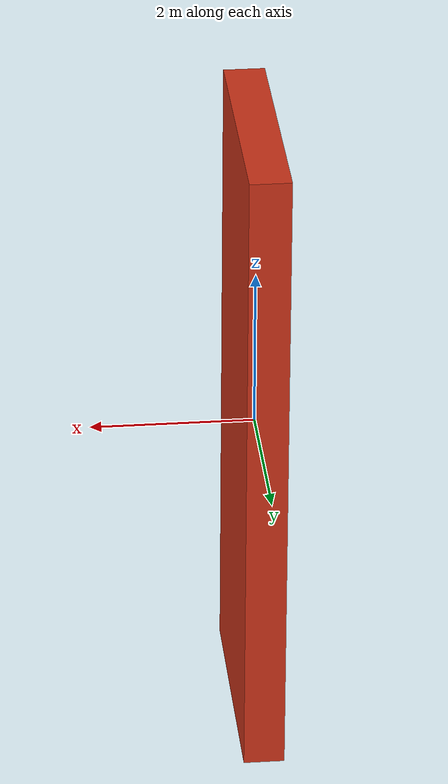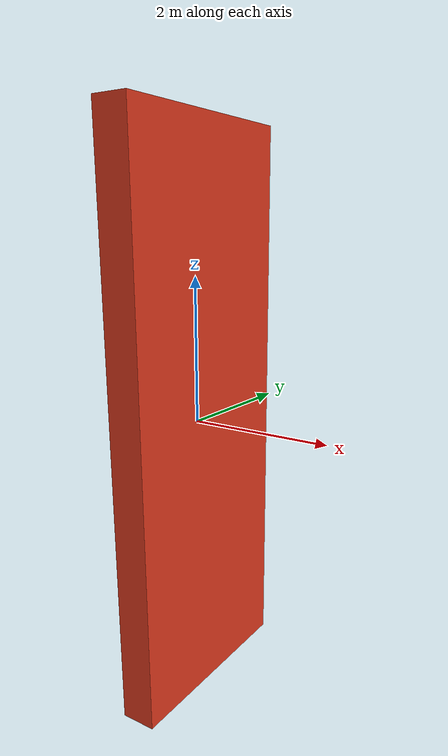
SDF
<?xml version="1.0"?>
<sdf version="1.6">
  <model name="test_wall">
    <static>true</static>
    <link name="wall_link">
      <collision name="collision">
        <geometry>
          <box>
            <size>0.5 3.0 8.0</size>
          </box>
        </geometry>
      </collision>

      <visual name="visual">
        <geometry>
          <box>
            <size>0.5 3.0 8.0</size>
          </box>
        </geometry>
        <material>
          <ambient>0.8 0.2 0.1 1</ambient>
          <diffuse>0.8 0.2 0.1 1</diffuse>
        </material>
      </visual>
    </link>
  </model>
</sdf>
